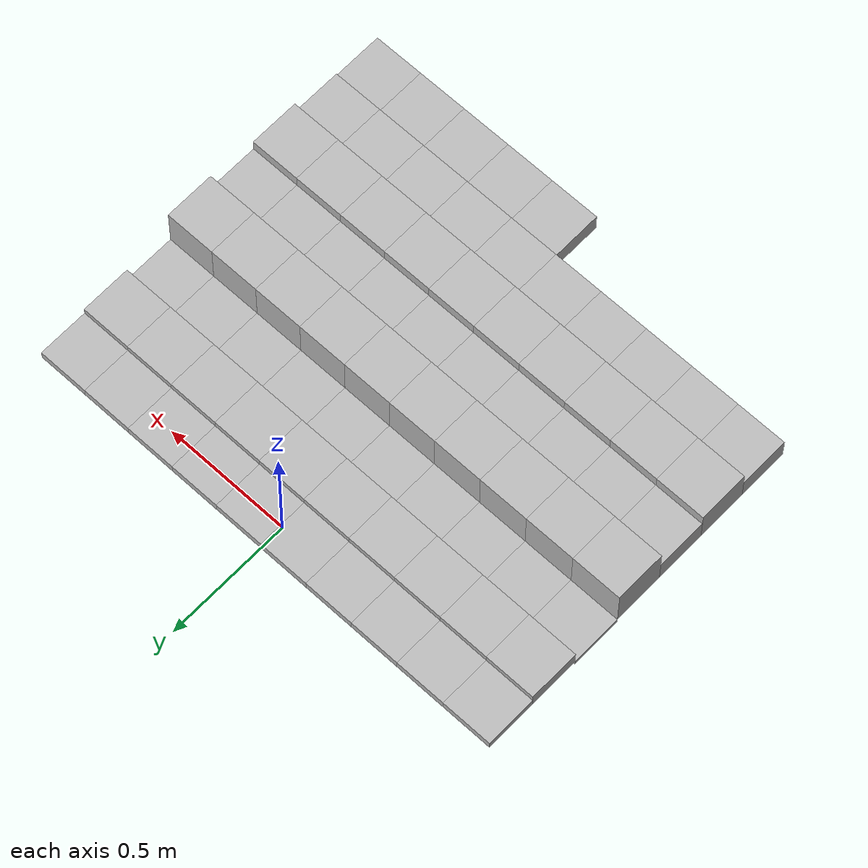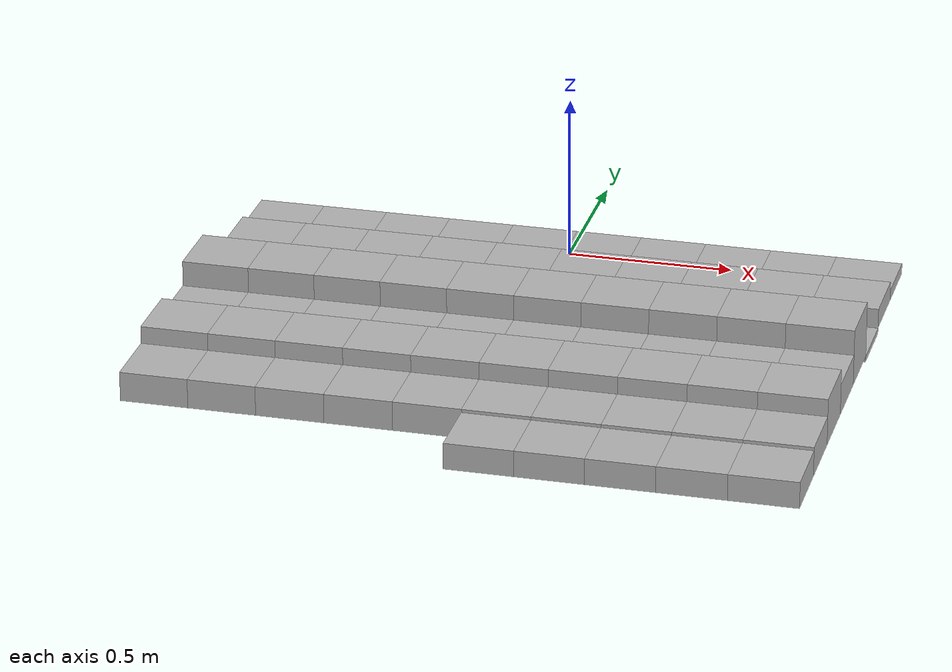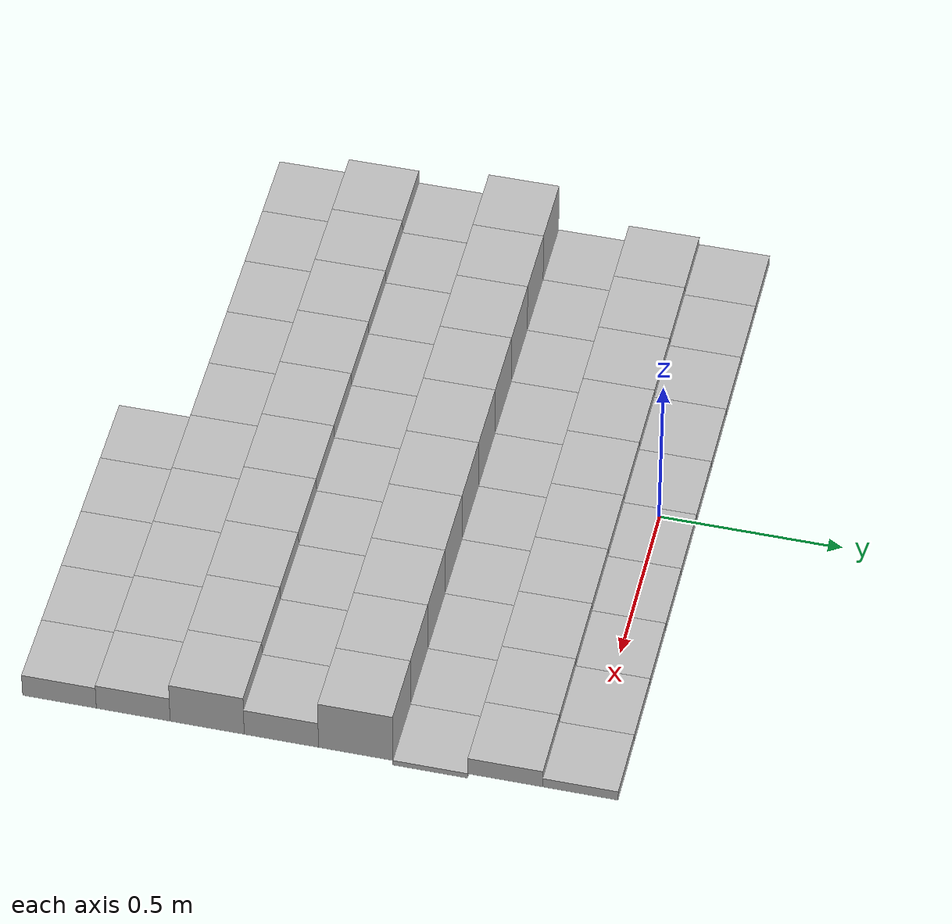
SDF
<sdf version="1.6">
 <model name="Terrain">
  <static>true</static>
  <link name="box_0_0">
   <pose>-0.9 0.0 0.0165394929755 0 0 0</pose>
   <inertial>
    <mass>1.0</mass>
    <inertia><ixx>0.0</ixx><ixy>0.0</ixy><ixz>0.0</ixz><iyy>0.0</iyy><iyz>0.0</iyz><izz>0.0</izz></inertia>
   </inertial>
   <collision name="collision"><geometry><box><size>0.2 0.2 0.033078985951</size></box></geometry></collision>
   <visual name="visual"><geometry><box><size>0.2 0.2 0.033078985951</size></box></geometry></visual>
  </link>
  <link name="box_0_1">
   <pose>-0.7 0.0 0.0165394929755 0 0 0</pose>
   <inertial>
    <mass>1.0</mass>
    <inertia><ixx>0.0</ixx><ixy>0.0</ixy><ixz>0.0</ixz><iyy>0.0</iyy><iyz>0.0</iyz><izz>0.0</izz></inertia>
   </inertial>
   <collision name="collision"><geometry><box><size>0.2 0.2 0.033078985951</size></box></geometry></collision>
   <visual name="visual"><geometry><box><size>0.2 0.2 0.033078985951</size></box></geometry></visual>
  </link>
  <link name="box_0_2">
   <pose>-0.5 0.0 0.0165394929755 0 0 0</pose>
   <inertial>
    <mass>1.0</mass>
    <inertia><ixx>0.0</ixx><ixy>0.0</ixy><ixz>0.0</ixz><iyy>0.0</iyy><iyz>0.0</iyz><izz>0.0</izz></inertia>
   </inertial>
   <collision name="collision"><geometry><box><size>0.2 0.2 0.033078985951</size></box></geometry></collision>
   <visual name="visual"><geometry><box><size>0.2 0.2 0.033078985951</size></box></geometry></visual>
  </link>
  <link name="box_0_3">
   <pose>-0.3 0.0 0.0165394929755 0 0 0</pose>
   <inertial>
    <mass>1.0</mass>
    <inertia><ixx>0.0</ixx><ixy>0.0</ixy><ixz>0.0</ixz><iyy>0.0</iyy><iyz>0.0</iyz><izz>0.0</izz></inertia>
   </inertial>
   <collision name="collision"><geometry><box><size>0.2 0.2 0.033078985951</size></box></geometry></collision>
   <visual name="visual"><geometry><box><size>0.2 0.2 0.033078985951</size></box></geometry></visual>
  </link>
  <link name="box_0_4">
   <pose>-0.1 0.0 0.0165394929755 0 0 0</pose>
   <inertial>
    <mass>1.0</mass>
    <inertia><ixx>0.0</ixx><ixy>0.0</ixy><ixz>0.0</ixz><iyy>0.0</iyy><iyz>0.0</iyz><izz>0.0</izz></inertia>
   </inertial>
   <collision name="collision"><geometry><box><size>0.2 0.2 0.033078985951</size></box></geometry></collision>
   <visual name="visual"><geometry><box><size>0.2 0.2 0.033078985951</size></box></geometry></visual>
  </link>
  <link name="box_0_5">
   <pose>0.1 0.0 0.0165394929755 0 0 0</pose>
   <inertial>
    <mass>1.0</mass>
    <inertia><ixx>0.0</ixx><ixy>0.0</ixy><ixz>0.0</ixz><iyy>0.0</iyy><iyz>0.0</iyz><izz>0.0</izz></inertia>
   </inertial>
   <collision name="collision"><geometry><box><size>0.2 0.2 0.033078985951</size></box></geometry></collision>
   <visual name="visual"><geometry><box><size>0.2 0.2 0.033078985951</size></box></geometry></visual>
  </link>
  <link name="box_0_6">
   <pose>0.3 0.0 0.0165394929755 0 0 0</pose>
   <inertial>
    <mass>1.0</mass>
    <inertia><ixx>0.0</ixx><ixy>0.0</ixy><ixz>0.0</ixz><iyy>0.0</iyy><iyz>0.0</iyz><izz>0.0</izz></inertia>
   </inertial>
   <collision name="collision"><geometry><box><size>0.2 0.2 0.033078985951</size></box></geometry></collision>
   <visual name="visual"><geometry><box><size>0.2 0.2 0.033078985951</size></box></geometry></visual>
  </link>
  <link name="box_0_7">
   <pose>0.5 0.0 0.0165394929755 0 0 0</pose>
   <inertial>
    <mass>1.0</mass>
    <inertia><ixx>0.0</ixx><ixy>0.0</ixy><ixz>0.0</ixz><iyy>0.0</iyy><iyz>0.0</iyz><izz>0.0</izz></inertia>
   </inertial>
   <collision name="collision"><geometry><box><size>0.2 0.2 0.033078985951</size></box></geometry></collision>
   <visual name="visual"><geometry><box><size>0.2 0.2 0.033078985951</size></box></geometry></visual>
  </link>
  <link name="box_0_8">
   <pose>0.7 0.0 0.0165394929755 0 0 0</pose>
   <inertial>
    <mass>1.0</mass>
    <inertia><ixx>0.0</ixx><ixy>0.0</ixy><ixz>0.0</ixz><iyy>0.0</iyy><iyz>0.0</iyz><izz>0.0</izz></inertia>
   </inertial>
   <collision name="collision"><geometry><box><size>0.2 0.2 0.033078985951</size></box></geometry></collision>
   <visual name="visual"><geometry><box><size>0.2 0.2 0.033078985951</size></box></geometry></visual>
  </link>
  <link name="box_0_9">
   <pose>0.9 0.0 0.0165394929755 0 0 0</pose>
   <inertial>
    <mass>1.0</mass>
    <inertia><ixx>0.0</ixx><ixy>0.0</ixy><ixz>0.0</ixz><iyy>0.0</iyy><iyz>0.0</iyz><izz>0.0</izz></inertia>
   </inertial>
   <collision name="collision"><geometry><box><size>0.2 0.2 0.033078985951</size></box></geometry></collision>
   <visual name="visual"><geometry><box><size>0.2 0.2 0.033078985951</size></box></geometry></visual>
  </link>
  <link name="box_1_0">
   <pose>-0.9 -0.2 0.0302441475297 0 0 0</pose>
   <inertial>
    <mass>1.0</mass>
    <inertia><ixx>0.0</ixx><ixy>0.0</ixy><ixz>0.0</ixz><iyy>0.0</iyy><iyz>0.0</iyz><izz>0.0</izz></inertia>
   </inertial>
   <collision name="collision"><geometry><box><size>0.2 0.2 0.0604882950595</size></box></geometry></collision>
   <visual name="visual"><geometry><box><size>0.2 0.2 0.0604882950595</size></box></geometry></visual>
  </link>
  <link name="box_1_1">
   <pose>-0.7 -0.2 0.0302441475297 0 0 0</pose>
   <inertial>
    <mass>1.0</mass>
    <inertia><ixx>0.0</ixx><ixy>0.0</ixy><ixz>0.0</ixz><iyy>0.0</iyy><iyz>0.0</iyz><izz>0.0</izz></inertia>
   </inertial>
   <collision name="collision"><geometry><box><size>0.2 0.2 0.0604882950595</size></box></geometry></collision>
   <visual name="visual"><geometry><box><size>0.2 0.2 0.0604882950595</size></box></geometry></visual>
  </link>
  <link name="box_1_2">
   <pose>-0.5 -0.2 0.0302441475297 0 0 0</pose>
   <inertial>
    <mass>1.0</mass>
    <inertia><ixx>0.0</ixx><ixy>0.0</ixy><ixz>0.0</ixz><iyy>0.0</iyy><iyz>0.0</iyz><izz>0.0</izz></inertia>
   </inertial>
   <collision name="collision"><geometry><box><size>0.2 0.2 0.0604882950595</size></box></geometry></collision>
   <visual name="visual"><geometry><box><size>0.2 0.2 0.0604882950595</size></box></geometry></visual>
  </link>
  <link name="box_1_3">
   <pose>-0.3 -0.2 0.0302441475297 0 0 0</pose>
   <inertial>
    <mass>1.0</mass>
    <inertia><ixx>0.0</ixx><ixy>0.0</ixy><ixz>0.0</ixz><iyy>0.0</iyy><iyz>0.0</iyz><izz>0.0</izz></inertia>
   </inertial>
   <collision name="collision"><geometry><box><size>0.2 0.2 0.0604882950595</size></box></geometry></collision>
   <visual name="visual"><geometry><box><size>0.2 0.2 0.0604882950595</size></box></geometry></visual>
  </link>
  <link name="box_1_4">
   <pose>-0.1 -0.2 0.0302441475297 0 0 0</pose>
   <inertial>
    <mass>1.0</mass>
    <inertia><ixx>0.0</ixx><ixy>0.0</ixy><ixz>0.0</ixz><iyy>0.0</iyy><iyz>0.0</iyz><izz>0.0</izz></inertia>
   </inertial>
   <collision name="collision"><geometry><box><size>0.2 0.2 0.0604882950595</size></box></geometry></collision>
   <visual name="visual"><geometry><box><size>0.2 0.2 0.0604882950595</size></box></geometry></visual>
  </link>
  <link name="box_1_5">
   <pose>0.1 -0.2 0.0302441475297 0 0 0</pose>
   <inertial>
    <mass>1.0</mass>
    <inertia><ixx>0.0</ixx><ixy>0.0</ixy><ixz>0.0</ixz><iyy>0.0</iyy><iyz>0.0</iyz><izz>0.0</izz></inertia>
   </inertial>
   <collision name="collision"><geometry><box><size>0.2 0.2 0.0604882950595</size></box></geometry></collision>
   <visual name="visual"><geometry><box><size>0.2 0.2 0.0604882950595</size></box></geometry></visual>
  </link>
  <link name="box_1_6">
   <pose>0.3 -0.2 0.0302441475297 0 0 0</pose>
   <inertial>
    <mass>1.0</mass>
    <inertia><ixx>0.0</ixx><ixy>0.0</ixy><ixz>0.0</ixz><iyy>0.0</iyy><iyz>0.0</iyz><izz>0.0</izz></inertia>
   </inertial>
   <collision name="collision"><geometry><box><size>0.2 0.2 0.0604882950595</size></box></geometry></collision>
   <visual name="visual"><geometry><box><size>0.2 0.2 0.0604882950595</size></box></geometry></visual>
  </link>
  <link name="box_1_7">
   <pose>0.5 -0.2 0.0302441475297 0 0 0</pose>
   <inertial>
    <mass>1.0</mass>
    <inertia><ixx>0.0</ixx><ixy>0.0</ixy><ixz>0.0</ixz><iyy>0.0</iyy><iyz>0.0</iyz><izz>0.0</izz></inertia>
   </inertial>
   <collision name="collision"><geometry><box><size>0.2 0.2 0.0604882950595</size></box></geometry></collision>
   <visual name="visual"><geometry><box><size>0.2 0.2 0.0604882950595</size></box></geometry></visual>
  </link>
  <link name="box_1_8">
   <pose>0.7 -0.2 0.0302441475297 0 0 0</pose>
   <inertial>
    <mass>1.0</mass>
    <inertia><ixx>0.0</ixx><ixy>0.0</ixy><ixz>0.0</ixz><iyy>0.0</iyy><iyz>0.0</iyz><izz>0.0</izz></inertia>
   </inertial>
   <collision name="collision"><geometry><box><size>0.2 0.2 0.0604882950595</size></box></geometry></collision>
   <visual name="visual"><geometry><box><size>0.2 0.2 0.0604882950595</size></box></geometry></visual>
  </link>
  <link name="box_1_9">
   <pose>0.9 -0.2 0.0302441475297 0 0 0</pose>
   <inertial>
    <mass>1.0</mass>
    <inertia><ixx>0.0</ixx><ixy>0.0</ixy><ixz>0.0</ixz><iyy>0.0</iyy><iyz>0.0</iyz><izz>0.0</izz></inertia>
   </inertial>
   <collision name="collision"><geometry><box><size>0.2 0.2 0.0604882950595</size></box></geometry></collision>
   <visual name="visual"><geometry><box><size>0.2 0.2 0.0604882950595</size></box></geometry></visual>
  </link>
  <link name="box_2_0">
   <pose>-0.9 -0.4 -0.00895303547114 0 0 0</pose>
   <inertial>
    <mass>1.0</mass>
    <inertia><ixx>0.0</ixx><ixy>0.0</ixy><ixz>0.0</ixz><iyy>0.0</iyy><iyz>0.0</iyz><izz>0.0</izz></inertia>
   </inertial>
   <collision name="collision"><geometry><box><size>0.2 0.2 -0.0179060709423</size></box></geometry></collision>
   <visual name="visual"><geometry><box><size>0.2 0.2 -0.0179060709423</size></box></geometry></visual>
  </link>
  <link name="box_2_1">
   <pose>-0.7 -0.4 -0.00895303547114 0 0 0</pose>
   <inertial>
    <mass>1.0</mass>
    <inertia><ixx>0.0</ixx><ixy>0.0</ixy><ixz>0.0</ixz><iyy>0.0</iyy><iyz>0.0</iyz><izz>0.0</izz></inertia>
   </inertial>
   <collision name="collision"><geometry><box><size>0.2 0.2 -0.0179060709423</size></box></geometry></collision>
   <visual name="visual"><geometry><box><size>0.2 0.2 -0.0179060709423</size></box></geometry></visual>
  </link>
  <link name="box_2_2">
   <pose>-0.5 -0.4 -0.00895303547114 0 0 0</pose>
   <inertial>
    <mass>1.0</mass>
    <inertia><ixx>0.0</ixx><ixy>0.0</ixy><ixz>0.0</ixz><iyy>0.0</iyy><iyz>0.0</iyz><izz>0.0</izz></inertia>
   </inertial>
   <collision name="collision"><geometry><box><size>0.2 0.2 -0.0179060709423</size></box></geometry></collision>
   <visual name="visual"><geometry><box><size>0.2 0.2 -0.0179060709423</size></box></geometry></visual>
  </link>
  <link name="box_2_3">
   <pose>-0.3 -0.4 -0.00895303547114 0 0 0</pose>
   <inertial>
    <mass>1.0</mass>
    <inertia><ixx>0.0</ixx><ixy>0.0</ixy><ixz>0.0</ixz><iyy>0.0</iyy><iyz>0.0</iyz><izz>0.0</izz></inertia>
   </inertial>
   <collision name="collision"><geometry><box><size>0.2 0.2 -0.0179060709423</size></box></geometry></collision>
   <visual name="visual"><geometry><box><size>0.2 0.2 -0.0179060709423</size></box></geometry></visual>
  </link>
  <link name="box_2_4">
   <pose>-0.1 -0.4 -0.00895303547114 0 0 0</pose>
   <inertial>
    <mass>1.0</mass>
    <inertia><ixx>0.0</ixx><ixy>0.0</ixy><ixz>0.0</ixz><iyy>0.0</iyy><iyz>0.0</iyz><izz>0.0</izz></inertia>
   </inertial>
   <collision name="collision"><geometry><box><size>0.2 0.2 -0.0179060709423</size></box></geometry></collision>
   <visual name="visual"><geometry><box><size>0.2 0.2 -0.0179060709423</size></box></geometry></visual>
  </link>
  <link name="box_2_5">
   <pose>0.1 -0.4 -0.00895303547114 0 0 0</pose>
   <inertial>
    <mass>1.0</mass>
    <inertia><ixx>0.0</ixx><ixy>0.0</ixy><ixz>0.0</ixz><iyy>0.0</iyy><iyz>0.0</iyz><izz>0.0</izz></inertia>
   </inertial>
   <collision name="collision"><geometry><box><size>0.2 0.2 -0.0179060709423</size></box></geometry></collision>
   <visual name="visual"><geometry><box><size>0.2 0.2 -0.0179060709423</size></box></geometry></visual>
  </link>
  <link name="box_2_6">
   <pose>0.3 -0.4 -0.00895303547114 0 0 0</pose>
   <inertial>
    <mass>1.0</mass>
    <inertia><ixx>0.0</ixx><ixy>0.0</ixy><ixz>0.0</ixz><iyy>0.0</iyy><iyz>0.0</iyz><izz>0.0</izz></inertia>
   </inertial>
   <collision name="collision"><geometry><box><size>0.2 0.2 -0.0179060709423</size></box></geometry></collision>
   <visual name="visual"><geometry><box><size>0.2 0.2 -0.0179060709423</size></box></geometry></visual>
  </link>
  <link name="box_2_7">
   <pose>0.5 -0.4 -0.00895303547114 0 0 0</pose>
   <inertial>
    <mass>1.0</mass>
    <inertia><ixx>0.0</ixx><ixy>0.0</ixy><ixz>0.0</ixz><iyy>0.0</iyy><iyz>0.0</iyz><izz>0.0</izz></inertia>
   </inertial>
   <collision name="collision"><geometry><box><size>0.2 0.2 -0.0179060709423</size></box></geometry></collision>
   <visual name="visual"><geometry><box><size>0.2 0.2 -0.0179060709423</size></box></geometry></visual>
  </link>
  <link name="box_2_8">
   <pose>0.7 -0.4 -0.00895303547114 0 0 0</pose>
   <inertial>
    <mass>1.0</mass>
    <inertia><ixx>0.0</ixx><ixy>0.0</ixy><ixz>0.0</ixz><iyy>0.0</iyy><iyz>0.0</iyz><izz>0.0</izz></inertia>
   </inertial>
   <collision name="collision"><geometry><box><size>0.2 0.2 -0.0179060709423</size></box></geometry></collision>
   <visual name="visual"><geometry><box><size>0.2 0.2 -0.0179060709423</size></box></geometry></visual>
  </link>
  <link name="box_2_9">
   <pose>0.9 -0.4 -0.00895303547114 0 0 0</pose>
   <inertial>
    <mass>1.0</mass>
    <inertia><ixx>0.0</ixx><ixy>0.0</ixy><ixz>0.0</ixz><iyy>0.0</iyy><iyz>0.0</iyz><izz>0.0</izz></inertia>
   </inertial>
   <collision name="collision"><geometry><box><size>0.2 0.2 -0.0179060709423</size></box></geometry></collision>
   <visual name="visual"><geometry><box><size>0.2 0.2 -0.0179060709423</size></box></geometry></visual>
  </link>
  <link name="box_3_0">
   <pose>-0.9 -0.6 0.0857259189097 0 0 0</pose>
   <inertial>
    <mass>1.0</mass>
    <inertia><ixx>0.0</ixx><ixy>0.0</ixy><ixz>0.0</ixz><iyy>0.0</iyy><iyz>0.0</iyz><izz>0.0</izz></inertia>
   </inertial>
   <collision name="collision"><geometry><box><size>0.2 0.2 0.171451837819</size></box></geometry></collision>
   <visual name="visual"><geometry><box><size>0.2 0.2 0.171451837819</size></box></geometry></visual>
  </link>
  <link name="box_3_1">
   <pose>-0.7 -0.6 0.0857259189097 0 0 0</pose>
   <inertial>
    <mass>1.0</mass>
    <inertia><ixx>0.0</ixx><ixy>0.0</ixy><ixz>0.0</ixz><iyy>0.0</iyy><iyz>0.0</iyz><izz>0.0</izz></inertia>
   </inertial>
   <collision name="collision"><geometry><box><size>0.2 0.2 0.171451837819</size></box></geometry></collision>
   <visual name="visual"><geometry><box><size>0.2 0.2 0.171451837819</size></box></geometry></visual>
  </link>
  <link name="box_3_2">
   <pose>-0.5 -0.6 0.0857259189097 0 0 0</pose>
   <inertial>
    <mass>1.0</mass>
    <inertia><ixx>0.0</ixx><ixy>0.0</ixy><ixz>0.0</ixz><iyy>0.0</iyy><iyz>0.0</iyz><izz>0.0</izz></inertia>
   </inertial>
   <collision name="collision"><geometry><box><size>0.2 0.2 0.171451837819</size></box></geometry></collision>
   <visual name="visual"><geometry><box><size>0.2 0.2 0.171451837819</size></box></geometry></visual>
  </link>
  <link name="box_3_3">
   <pose>-0.3 -0.6 0.0857259189097 0 0 0</pose>
   <inertial>
    <mass>1.0</mass>
    <inertia><ixx>0.0</ixx><ixy>0.0</ixy><ixz>0.0</ixz><iyy>0.0</iyy><iyz>0.0</iyz><izz>0.0</izz></inertia>
   </inertial>
   <collision name="collision"><geometry><box><size>0.2 0.2 0.171451837819</size></box></geometry></collision>
   <visual name="visual"><geometry><box><size>0.2 0.2 0.171451837819</size></box></geometry></visual>
  </link>
  <link name="box_3_4">
   <pose>-0.1 -0.6 0.0857259189097 0 0 0</pose>
   <inertial>
    <mass>1.0</mass>
    <inertia><ixx>0.0</ixx><ixy>0.0</ixy><ixz>0.0</ixz><iyy>0.0</iyy><iyz>0.0</iyz><izz>0.0</izz></inertia>
   </inertial>
   <collision name="collision"><geometry><box><size>0.2 0.2 0.171451837819</size></box></geometry></collision>
   <visual name="visual"><geometry><box><size>0.2 0.2 0.171451837819</size></box></geometry></visual>
  </link>
  <link name="box_3_5">
   <pose>0.1 -0.6 0.0857259189097 0 0 0</pose>
   <inertial>
    <mass>1.0</mass>
    <inertia><ixx>0.0</ixx><ixy>0.0</ixy><ixz>0.0</ixz><iyy>0.0</iyy><iyz>0.0</iyz><izz>0.0</izz></inertia>
   </inertial>
   <collision name="collision"><geometry><box><size>0.2 0.2 0.171451837819</size></box></geometry></collision>
   <visual name="visual"><geometry><box><size>0.2 0.2 0.171451837819</size></box></geometry></visual>
  </link>
  <link name="box_3_6">
   <pose>0.3 -0.6 0.0857259189097 0 0 0</pose>
   <inertial>
    <mass>1.0</mass>
    <inertia><ixx>0.0</ixx><ixy>0.0</ixy><ixz>0.0</ixz><iyy>0.0</iyy><iyz>0.0</iyz><izz>0.0</izz></inertia>
   </inertial>
   <collision name="collision"><geometry><box><size>0.2 0.2 0.171451837819</size></box></geometry></collision>
   <visual name="visual"><geometry><box><size>0.2 0.2 0.171451837819</size></box></geometry></visual>
  </link>
  <link name="box_3_7">
   <pose>0.5 -0.6 0.0857259189097 0 0 0</pose>
   <inertial>
    <mass>1.0</mass>
    <inertia><ixx>0.0</ixx><ixy>0.0</ixy><ixz>0.0</ixz><iyy>0.0</iyy><iyz>0.0</iyz><izz>0.0</izz></inertia>
   </inertial>
   <collision name="collision"><geometry><box><size>0.2 0.2 0.171451837819</size></box></geometry></collision>
   <visual name="visual"><geometry><box><size>0.2 0.2 0.171451837819</size></box></geometry></visual>
  </link>
  <link name="box_3_8">
   <pose>0.7 -0.6 0.0857259189097 0 0 0</pose>
   <inertial>
    <mass>1.0</mass>
    <inertia><ixx>0.0</ixx><ixy>0.0</ixy><ixz>0.0</ixz><iyy>0.0</iyy><iyz>0.0</iyz><izz>0.0</izz></inertia>
   </inertial>
   <collision name="collision"><geometry><box><size>0.2 0.2 0.171451837819</size></box></geometry></collision>
   <visual name="visual"><geometry><box><size>0.2 0.2 0.171451837819</size></box></geometry></visual>
  </link>
  <link name="box_3_9">
   <pose>0.9 -0.6 0.0857259189097 0 0 0</pose>
   <inertial>
    <mass>1.0</mass>
    <inertia><ixx>0.0</ixx><ixy>0.0</ixy><ixz>0.0</ixz><iyy>0.0</iyy><iyz>0.0</iyz><izz>0.0</izz></inertia>
   </inertial>
   <collision name="collision"><geometry><box><size>0.2 0.2 0.171451837819</size></box></geometry></collision>
   <visual name="visual"><geometry><box><size>0.2 0.2 0.171451837819</size></box></geometry></visual>
  </link>
  <link name="box_4_0">
   <pose>-0.9 -0.8 0.0472552257137 0 0 0</pose>
   <inertial>
    <mass>1.0</mass>
    <inertia><ixx>0.0</ixx><ixy>0.0</ixy><ixz>0.0</ixz><iyy>0.0</iyy><iyz>0.0</iyz><izz>0.0</izz></inertia>
   </inertial>
   <collision name="collision"><geometry><box><size>0.2 0.2 0.0945104514274</size></box></geometry></collision>
   <visual name="visual"><geometry><box><size>0.2 0.2 0.0945104514274</size></box></geometry></visual>
  </link>
  <link name="box_4_1">
   <pose>-0.7 -0.8 0.0472552257137 0 0 0</pose>
   <inertial>
    <mass>1.0</mass>
    <inertia><ixx>0.0</ixx><ixy>0.0</ixy><ixz>0.0</ixz><iyy>0.0</iyy><iyz>0.0</iyz><izz>0.0</izz></inertia>
   </inertial>
   <collision name="collision"><geometry><box><size>0.2 0.2 0.0945104514274</size></box></geometry></collision>
   <visual name="visual"><geometry><box><size>0.2 0.2 0.0945104514274</size></box></geometry></visual>
  </link>
  <link name="box_4_2">
   <pose>-0.5 -0.8 0.0472552257137 0 0 0</pose>
   <inertial>
    <mass>1.0</mass>
    <inertia><ixx>0.0</ixx><ixy>0.0</ixy><ixz>0.0</ixz><iyy>0.0</iyy><iyz>0.0</iyz><izz>0.0</izz></inertia>
   </inertial>
   <collision name="collision"><geometry><box><size>0.2 0.2 0.0945104514274</size></box></geometry></collision>
   <visual name="visual"><geometry><box><size>0.2 0.2 0.0945104514274</size></box></geometry></visual>
  </link>
  <link name="box_4_3">
   <pose>-0.3 -0.8 0.0472552257137 0 0 0</pose>
   <inertial>
    <mass>1.0</mass>
    <inertia><ixx>0.0</ixx><ixy>0.0</ixy><ixz>0.0</ixz><iyy>0.0</iyy><iyz>0.0</iyz><izz>0.0</izz></inertia>
   </inertial>
   <collision name="collision"><geometry><box><size>0.2 0.2 0.0945104514274</size></box></geometry></collision>
   <visual name="visual"><geometry><box><size>0.2 0.2 0.0945104514274</size></box></geometry></visual>
  </link>
  <link name="box_4_4">
   <pose>-0.1 -0.8 0.0472552257137 0 0 0</pose>
   <inertial>
    <mass>1.0</mass>
    <inertia><ixx>0.0</ixx><ixy>0.0</ixy><ixz>0.0</ixz><iyy>0.0</iyy><iyz>0.0</iyz><izz>0.0</izz></inertia>
   </inertial>
   <collision name="collision"><geometry><box><size>0.2 0.2 0.0945104514274</size></box></geometry></collision>
   <visual name="visual"><geometry><box><size>0.2 0.2 0.0945104514274</size></box></geometry></visual>
  </link>
  <link name="box_4_5">
   <pose>0.1 -0.8 0.0472552257137 0 0 0</pose>
   <inertial>
    <mass>1.0</mass>
    <inertia><ixx>0.0</ixx><ixy>0.0</ixy><ixz>0.0</ixz><iyy>0.0</iyy><iyz>0.0</iyz><izz>0.0</izz></inertia>
   </inertial>
   <collision name="collision"><geometry><box><size>0.2 0.2 0.0945104514274</size></box></geometry></collision>
   <visual name="visual"><geometry><box><size>0.2 0.2 0.0945104514274</size></box></geometry></visual>
  </link>
  <link name="box_4_6">
   <pose>0.3 -0.8 0.0472552257137 0 0 0</pose>
   <inertial>
    <mass>1.0</mass>
    <inertia><ixx>0.0</ixx><ixy>0.0</ixy><ixz>0.0</ixz><iyy>0.0</iyy><iyz>0.0</iyz><izz>0.0</izz></inertia>
   </inertial>
   <collision name="collision"><geometry><box><size>0.2 0.2 0.0945104514274</size></box></geometry></collision>
   <visual name="visual"><geometry><box><size>0.2 0.2 0.0945104514274</size></box></geometry></visual>
  </link>
  <link name="box_4_7">
   <pose>0.5 -0.8 0.0472552257137 0 0 0</pose>
   <inertial>
    <mass>1.0</mass>
    <inertia><ixx>0.0</ixx><ixy>0.0</ixy><ixz>0.0</ixz><iyy>0.0</iyy><iyz>0.0</iyz><izz>0.0</izz></inertia>
   </inertial>
   <collision name="collision"><geometry><box><size>0.2 0.2 0.0945104514274</size></box></geometry></collision>
   <visual name="visual"><geometry><box><size>0.2 0.2 0.0945104514274</size></box></geometry></visual>
  </link>
  <link name="box_4_8">
   <pose>0.7 -0.8 0.0472552257137 0 0 0</pose>
   <inertial>
    <mass>1.0</mass>
    <inertia><ixx>0.0</ixx><ixy>0.0</ixy><ixz>0.0</ixz><iyy>0.0</iyy><iyz>0.0</iyz><izz>0.0</izz></inertia>
   </inertial>
   <collision name="collision"><geometry><box><size>0.2 0.2 0.0945104514274</size></box></geometry></collision>
   <visual name="visual"><geometry><box><size>0.2 0.2 0.0945104514274</size></box></geometry></visual>
  </link>
  <link name="box_4_9">
   <pose>0.9 -0.8 0.0472552257137 0 0 0</pose>
   <inertial>
    <mass>1.0</mass>
    <inertia><ixx>0.0</ixx><ixy>0.0</ixy><ixz>0.0</ixz><iyy>0.0</iyy><iyz>0.0</iyz><izz>0.0</izz></inertia>
   </inertial>
   <collision name="collision"><geometry><box><size>0.2 0.2 0.0945104514274</size></box></geometry></collision>
   <visual name="visual"><geometry><box><size>0.2 0.2 0.0945104514274</size></box></geometry></visual>
  </link>
  <link name="box_5_0">
   <pose>-0.9 -1.0 0.0707569069492 0 0 0</pose>
   <inertial>
    <mass>1.0</mass>
    <inertia><ixx>0.0</ixx><ixy>0.0</ixy><ixz>0.0</ixz><iyy>0.0</iyy><iyz>0.0</iyz><izz>0.0</izz></inertia>
   </inertial>
   <collision name="collision"><geometry><box><size>0.2 0.2 0.141513813898</size></box></geometry></collision>
   <visual name="visual"><geometry><box><size>0.2 0.2 0.141513813898</size></box></geometry></visual>
  </link>
  <link name="box_5_1">
   <pose>-0.7 -1.0 0.0707569069492 0 0 0</pose>
   <inertial>
    <mass>1.0</mass>
    <inertia><ixx>0.0</ixx><ixy>0.0</ixy><ixz>0.0</ixz><iyy>0.0</iyy><iyz>0.0</iyz><izz>0.0</izz></inertia>
   </inertial>
   <collision name="collision"><geometry><box><size>0.2 0.2 0.141513813898</size></box></geometry></collision>
   <visual name="visual"><geometry><box><size>0.2 0.2 0.141513813898</size></box></geometry></visual>
  </link>
  <link name="box_5_2">
   <pose>-0.5 -1.0 0.0707569069492 0 0 0</pose>
   <inertial>
    <mass>1.0</mass>
    <inertia><ixx>0.0</ixx><ixy>0.0</ixy><ixz>0.0</ixz><iyy>0.0</iyy><iyz>0.0</iyz><izz>0.0</izz></inertia>
   </inertial>
   <collision name="collision"><geometry><box><size>0.2 0.2 0.141513813898</size></box></geometry></collision>
   <visual name="visual"><geometry><box><size>0.2 0.2 0.141513813898</size></box></geometry></visual>
  </link>
  <link name="box_5_3">
   <pose>-0.3 -1.0 0.0707569069492 0 0 0</pose>
   <inertial>
    <mass>1.0</mass>
    <inertia><ixx>0.0</ixx><ixy>0.0</ixy><ixz>0.0</ixz><iyy>0.0</iyy><iyz>0.0</iyz><izz>0.0</izz></inertia>
   </inertial>
   <collision name="collision"><geometry><box><size>0.2 0.2 0.141513813898</size></box></geometry></collision>
   <visual name="visual"><geometry><box><size>0.2 0.2 0.141513813898</size></box></geometry></visual>
  </link>
  <link name="box_5_4">
   <pose>-0.1 -1.0 0.0707569069492 0 0 0</pose>
   <inertial>
    <mass>1.0</mass>
    <inertia><ixx>0.0</ixx><ixy>0.0</ixy><ixz>0.0</ixz><iyy>0.0</iyy><iyz>0.0</iyz><izz>0.0</izz></inertia>
   </inertial>
   <collision name="collision"><geometry><box><size>0.2 0.2 0.141513813898</size></box></geometry></collision>
   <visual name="visual"><geometry><box><size>0.2 0.2 0.141513813898</size></box></geometry></visual>
  </link>
  <link name="box_5_5">
   <pose>0.1 -1.0 0.0707569069492 0 0 0</pose>
   <inertial>
    <mass>1.0</mass>
    <inertia><ixx>0.0</ixx><ixy>0.0</ixy><ixz>0.0</ixz><iyy>0.0</iyy><iyz>0.0</iyz><izz>0.0</izz></inertia>
   </inertial>
   <collision name="collision"><geometry><box><size>0.2 0.2 0.141513813898</size></box></geometry></collision>
   <visual name="visual"><geometry><box><size>0.2 0.2 0.141513813898</size></box></geometry></visual>
  </link>
  <link name="box_5_6">
   <pose>0.3 -1.0 0.0707569069492 0 0 0</pose>
   <inertial>
    <mass>1.0</mass>
    <inertia><ixx>0.0</ixx><ixy>0.0</ixy><ixz>0.0</ixz><iyy>0.0</iyy><iyz>0.0</iyz><izz>0.0</izz></inertia>
   </inertial>
   <collision name="collision"><geometry><box><size>0.2 0.2 0.141513813898</size></box></geometry></collision>
   <visual name="visual"><geometry><box><size>0.2 0.2 0.141513813898</size></box></geometry></visual>
  </link>
  <link name="box_5_7">
   <pose>0.5 -1.0 0.0707569069492 0 0 0</pose>
   <inertial>
    <mass>1.0</mass>
    <inertia><ixx>0.0</ixx><ixy>0.0</ixy><ixz>0.0</ixz><iyy>0.0</iyy><iyz>0.0</iyz><izz>0.0</izz></inertia>
   </inertial>
   <collision name="collision"><geometry><box><size>0.2 0.2 0.141513813898</size></box></geometry></collision>
   <visual name="visual"><geometry><box><size>0.2 0.2 0.141513813898</size></box></geometry></visual>
  </link>
  <link name="box_5_8">
   <pose>0.7 -1.0 0.0707569069492 0 0 0</pose>
   <inertial>
    <mass>1.0</mass>
    <inertia><ixx>0.0</ixx><ixy>0.0</ixy><ixz>0.0</ixz><iyy>0.0</iyy><iyz>0.0</iyz><izz>0.0</izz></inertia>
   </inertial>
   <collision name="collision"><geometry><box><size>0.2 0.2 0.141513813898</size></box></geometry></collision>
   <visual name="visual"><geometry><box><size>0.2 0.2 0.141513813898</size></box></geometry></visual>
  </link>
  <link name="box_5_9">
   <pose>0.9 -1.0 0.0707569069492 0 0 0</pose>
   <inertial>
    <mass>1.0</mass>
    <inertia><ixx>0.0</ixx><ixy>0.0</ixy><ixz>0.0</ixz><iyy>0.0</iyy><iyz>0.0</iyz><izz>0.0</izz></inertia>
   </inertial>
   <collision name="collision"><geometry><box><size>0.2 0.2 0.141513813898</size></box></geometry></collision>
   <visual name="visual"><geometry><box><size>0.2 0.2 0.141513813898</size></box></geometry></visual>
  </link>
  <link name="box_6_0">
   <pose>-0.9 -1.2 0.0444107034706 0 0 0</pose>
   <inertial>
    <mass>1.0</mass>
    <inertia><ixx>0.0</ixx><ixy>0.0</ixy><ixz>0.0</ixz><iyy>0.0</iyy><iyz>0.0</iyz><izz>0.0</izz></inertia>
   </inertial>
   <collision name="collision"><geometry><box><size>0.2 0.2 0.0888214069412</size></box></geometry></collision>
   <visual name="visual"><geometry><box><size>0.2 0.2 0.0888214069412</size></box></geometry></visual>
  </link>
  <link name="box_6_1">
   <pose>-0.7 -1.2 0.0444107034706 0 0 0</pose>
   <inertial>
    <mass>1.0</mass>
    <inertia><ixx>0.0</ixx><ixy>0.0</ixy><ixz>0.0</ixz><iyy>0.0</iyy><iyz>0.0</iyz><izz>0.0</izz></inertia>
   </inertial>
   <collision name="collision"><geometry><box><size>0.2 0.2 0.0888214069412</size></box></geometry></collision>
   <visual name="visual"><geometry><box><size>0.2 0.2 0.0888214069412</size></box></geometry></visual>
  </link>
  <link name="box_6_2">
   <pose>-0.5 -1.2 0.0444107034706 0 0 0</pose>
   <inertial>
    <mass>1.0</mass>
    <inertia><ixx>0.0</ixx><ixy>0.0</ixy><ixz>0.0</ixz><iyy>0.0</iyy><iyz>0.0</iyz><izz>0.0</izz></inertia>
   </inertial>
   <collision name="collision"><geometry><box><size>0.2 0.2 0.0888214069412</size></box></geometry></collision>
   <visual name="visual"><geometry><box><size>0.2 0.2 0.0888214069412</size></box></geometry></visual>
  </link>
  <link name="box_6_3">
   <pose>-0.3 -1.2 0.0444107034706 0 0 0</pose>
   <inertial>
    <mass>1.0</mass>
    <inertia><ixx>0.0</ixx><ixy>0.0</ixy><ixz>0.0</ixz><iyy>0.0</iyy><iyz>0.0</iyz><izz>0.0</izz></inertia>
   </inertial>
   <collision name="collision"><geometry><box><size>0.2 0.2 0.0888214069412</size></box></geometry></collision>
   <visual name="visual"><geometry><box><size>0.2 0.2 0.0888214069412</size></box></geometry></visual>
  </link>
  <link name="box_6_4">
   <pose>-0.1 -1.2 0.0444107034706 0 0 0</pose>
   <inertial>
    <mass>1.0</mass>
    <inertia><ixx>0.0</ixx><ixy>0.0</ixy><ixz>0.0</ixz><iyy>0.0</iyy><iyz>0.0</iyz><izz>0.0</izz></inertia>
   </inertial>
   <collision name="collision"><geometry><box><size>0.2 0.2 0.0888214069412</size></box></geometry></collision>
   <visual name="visual"><geometry><box><size>0.2 0.2 0.0888214069412</size></box></geometry></visual>
  </link>
  <link name="box_6_5">
   <pose>0.1 -1.2 0.0444107034706 0 0 0</pose>
   <inertial>
    <mass>1.0</mass>
    <inertia><ixx>0.0</ixx><ixy>0.0</ixy><ixz>0.0</ixz><iyy>0.0</iyy><iyz>0.0</iyz><izz>0.0</izz></inertia>
   </inertial>
   <collision name="collision"><geometry><box><size>0.2 0.2 0.0888214069412</size></box></geometry></collision>
   <visual name="visual"><geometry><box><size>0.2 0.2 0.0888214069412</size></box></geometry></visual>
  </link>
  <link name="box_6_6">
   <pose>0.3 -1.2 0.0444107034706 0 0 0</pose>
   <inertial>
    <mass>1.0</mass>
    <inertia><ixx>0.0</ixx><ixy>0.0</ixy><ixz>0.0</ixz><iyy>0.0</iyy><iyz>0.0</iyz><izz>0.0</izz></inertia>
   </inertial>
   <collision name="collision"><geometry><box><size>0.2 0.2 0.0888214069412</size></box></geometry></collision>
   <visual name="visual"><geometry><box><size>0.2 0.2 0.0888214069412</size></box></geometry></visual>
  </link>
  <link name="box_6_7">
   <pose>0.5 -1.2 0.0444107034706 0 0 0</pose>
   <inertial>
    <mass>1.0</mass>
    <inertia><ixx>0.0</ixx><ixy>0.0</ixy><ixz>0.0</ixz><iyy>0.0</iyy><iyz>0.0</iyz><izz>0.0</izz></inertia>
   </inertial>
   <collision name="collision"><geometry><box><size>0.2 0.2 0.0888214069412</size></box></geometry></collision>
   <visual name="visual"><geometry><box><size>0.2 0.2 0.0888214069412</size></box></geometry></visual>
  </link>
  <link name="box_6_8">
   <pose>0.7 -1.2 0.0444107034706 0 0 0</pose>
   <inertial>
    <mass>1.0</mass>
    <inertia><ixx>0.0</ixx><ixy>0.0</ixy><ixz>0.0</ixz><iyy>0.0</iyy><iyz>0.0</iyz><izz>0.0</izz></inertia>
   </inertial>
   <collision name="collision"><geometry><box><size>0.2 0.2 0.0888214069412</size></box></geometry></collision>
   <visual name="visual"><geometry><box><size>0.2 0.2 0.0888214069412</size></box></geometry></visual>
  </link>
  <link name="box_6_9">
   <pose>0.9 -1.2 0.0444107034706 0 0 0</pose>
   <inertial>
    <mass>1.0</mass>
    <inertia><ixx>0.0</ixx><ixy>0.0</ixy><ixz>0.0</ixz><iyy>0.0</iyy><iyz>0.0</iyz><izz>0.0</izz></inertia>
   </inertial>
   <collision name="collision"><geometry><box><size>0.2 0.2 0.0888214069412</size></box></geometry></collision>
   <visual name="visual"><geometry><box><size>0.2 0.2 0.0888214069412</size></box></geometry></visual>
  </link>
  <link name="box_7_5">
   <pose>0.1 -1.4 0.039535048557 0 0 0</pose>
   <inertial>
    <mass>1.0</mass>
    <inertia><ixx>0.0</ixx><ixy>0.0</ixy><ixz>0.0</ixz><iyy>0.0</iyy><iyz>0.0</iyz><izz>0.0</izz></inertia>
   </inertial>
   <collision name="collision"><geometry><box><size>0.2 0.2 0.079070097114</size></box></geometry></collision>
   <visual name="visual"><geometry><box><size>0.2 0.2 0.079070097114</size></box></geometry></visual>
  </link>
  <link name="box_7_6">
   <pose>0.3 -1.4 0.039535048557 0 0 0</pose>
   <inertial>
    <mass>1.0</mass>
    <inertia><ixx>0.0</ixx><ixy>0.0</ixy><ixz>0.0</ixz><iyy>0.0</iyy><iyz>0.0</iyz><izz>0.0</izz></inertia>
   </inertial>
   <collision name="collision"><geometry><box><size>0.2 0.2 0.079070097114</size></box></geometry></collision>
   <visual name="visual"><geometry><box><size>0.2 0.2 0.079070097114</size></box></geometry></visual>
  </link>
  <link name="box_7_7">
   <pose>0.5 -1.4 0.039535048557 0 0 0</pose>
   <inertial>
    <mass>1.0</mass>
    <inertia><ixx>0.0</ixx><ixy>0.0</ixy><ixz>0.0</ixz><iyy>0.0</iyy><iyz>0.0</iyz><izz>0.0</izz></inertia>
   </inertial>
   <collision name="collision"><geometry><box><size>0.2 0.2 0.079070097114</size></box></geometry></collision>
   <visual name="visual"><geometry><box><size>0.2 0.2 0.079070097114</size></box></geometry></visual>
  </link>
  <link name="box_7_8">
   <pose>0.7 -1.4 0.039535048557 0 0 0</pose>
   <inertial>
    <mass>1.0</mass>
    <inertia><ixx>0.0</ixx><ixy>0.0</ixy><ixz>0.0</ixz><iyy>0.0</iyy><iyz>0.0</iyz><izz>0.0</izz></inertia>
   </inertial>
   <collision name="collision"><geometry><box><size>0.2 0.2 0.079070097114</size></box></geometry></collision>
   <visual name="visual"><geometry><box><size>0.2 0.2 0.079070097114</size></box></geometry></visual>
  </link>
  <link name="box_7_9">
   <pose>0.9 -1.4 0.039535048557 0 0 0</pose>
   <inertial>
    <mass>1.0</mass>
    <inertia><ixx>0.0</ixx><ixy>0.0</ixy><ixz>0.0</ixz><iyy>0.0</iyy><iyz>0.0</iyz><izz>0.0</izz></inertia>
   </inertial>
   <collision name="collision"><geometry><box><size>0.2 0.2 0.079070097114</size></box></geometry></collision>
   <visual name="visual"><geometry><box><size>0.2 0.2 0.079070097114</size></box></geometry></visual>
  </link>
 </model>
</sdf>
